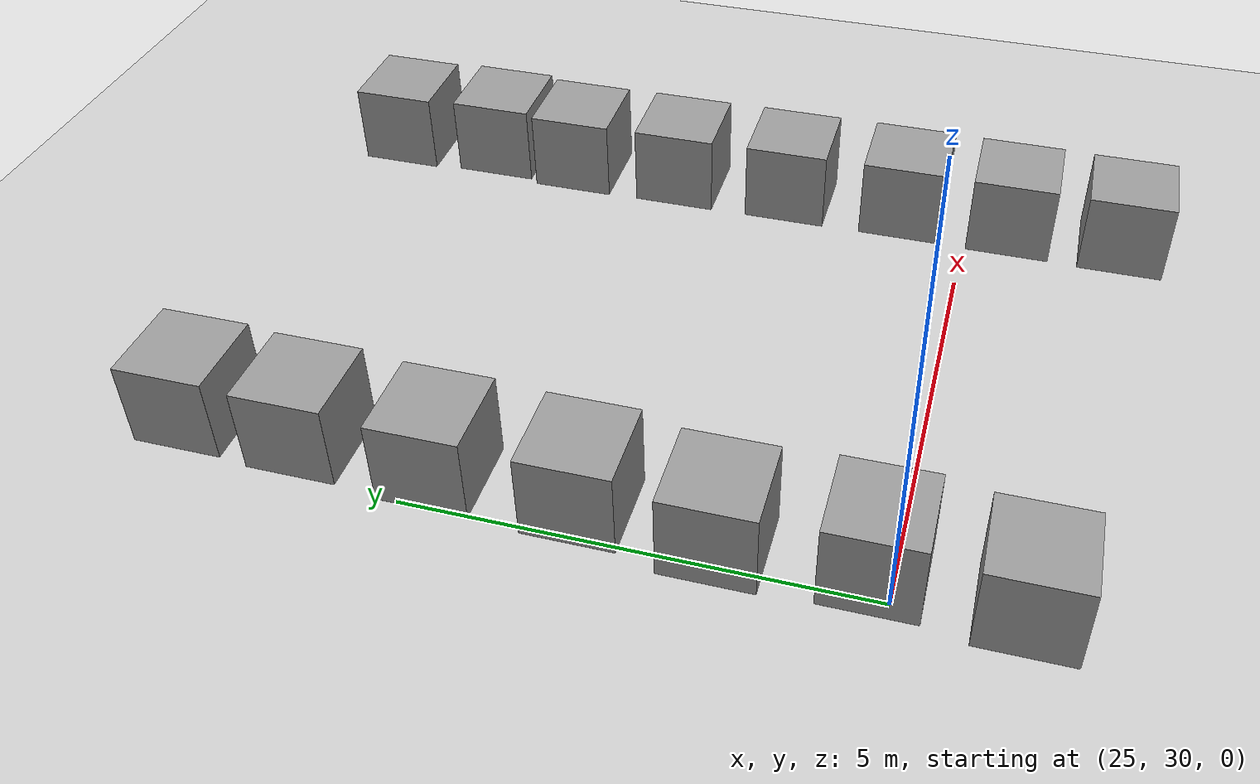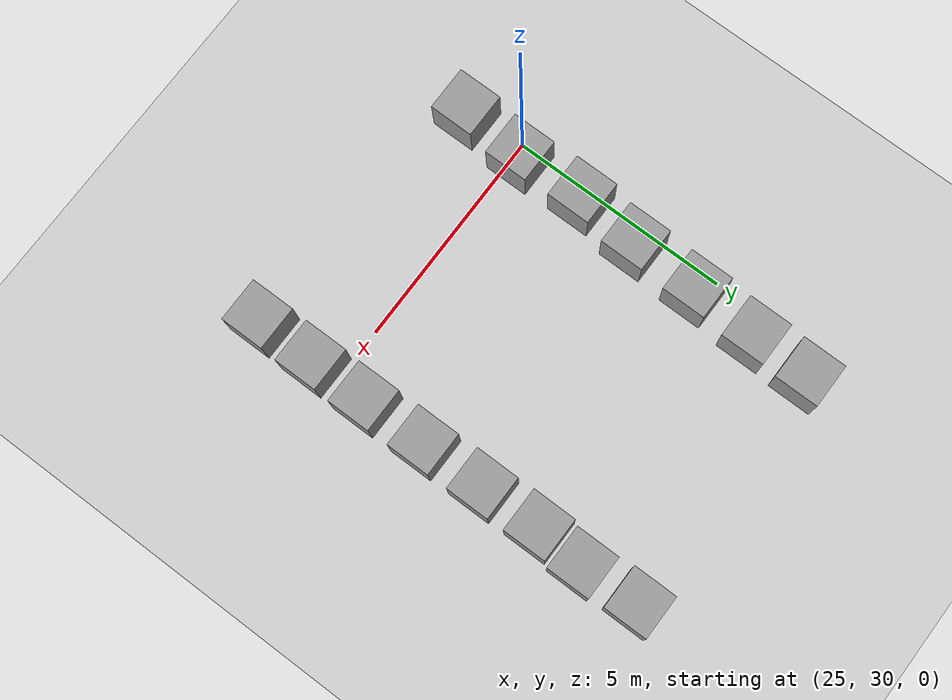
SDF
<sdf version="1.6">
 <world name="default">
  <light name="sun" type="directional">
   <pose>0 0 10 0 -0 0</pose>
   <diffuse>0.8 0.8 0.8 1</diffuse>
   <specular>0.2 0.2 0.2 1</specular>
   <attenuation>
    <range>1000</range>
    <constant>0.9</constant>
    <linear>0.01</linear>
    <quadratic>0.001</quadratic>
   </attenuation>
   <direction>-0.5 0.1 -0.9</direction>
  </light>
  <model name="ground_plane">
   <static>1</static>
   <link name="link">
    <collision name="collision">
     <geometry><plane><normal>0 0 1</normal><size>100 100</size></plane></geometry>
     <surface>
      <contact><collide_bitmask>65535</collide_bitmask></contact>
      <friction><ode><mu>100</mu><mu2>50</mu2></ode></friction>
     </surface>
    </collision>
    <visual name="visual">
     <cast_shadows>0</cast_shadows>
     <geometry><plane><normal>0 0 1</normal><size>100 100</size></plane></geometry>
     <material>
      <script><uri>file://media/materials/scripts/gazebo.material</uri><name>Gazebo/Grey</name></script>
     </material>
    </visual>
   </link>
  </model>
  <gravity>0 0 -9.8</gravity>
  <magnetic_field>6e-06 2.3e-05 -4.2e-05</magnetic_field>
  <atmosphere type="adiabatic"/>
  <physics name="default_physics" default="0" type="ode">
   <max_step_size>0.001</max_step_size>
   <real_time_factor>1</real_time_factor>
   <real_time_update_rate>1000</real_time_update_rate>
  </physics>
  <scene><ambient>0.4 0.4 0.4 1</ambient><background>0.7 0.7 0.7 1</background><shadows>1</shadows></scene>
  <audio><device>default</device></audio>
  <spherical_coordinates>
   <surface_model>EARTH_WGS84</surface_model>
   <latitude_deg>0</latitude_deg>
   <longitude_deg>0</longitude_deg>
   <elevation>0</elevation>
   <heading_deg>0</heading_deg>
  </spherical_coordinates>
  <model name="unit_box">
   <pose>25.6032 37.5416 0.499995 0 1e-05 0</pose>
   <link name="link">
    <inertial>
     <mass>1</mass>
     <inertia>
      <ixx>0.166667</ixx>
      <ixy>0</ixy>
      <ixz>0</ixz>
      <iyy>0.166667</iyy>
      <iyz>0</iyz>
      <izz>0.166667</izz>
     </inertia>
    </inertial>
    <collision name="collision"><geometry><box><size>1 1 1</size></box></geometry></collision>
    <visual name="visual">
     <geometry><box><size>1 1 1</size></box></geometry>
     <material>
      <script><name>Gazebo/Grey</name><uri>file://media/materials/scripts/gazebo.material</uri></script>
     </material>
    </visual>
   </link>
  </model>
  <model name="unit_box_0">
   <pose>25.5545 36.2111 0.499995 -1e-05 -0 -0</pose>
   <link name="link">
    <inertial>
     <mass>1</mass>
     <inertia>
      <ixx>0.166667</ixx>
      <ixy>0</ixy>
      <ixz>0</ixz>
      <iyy>0.166667</iyy>
      <iyz>0</iyz>
      <izz>0.166667</izz>
     </inertia>
    </inertial>
    <collision name="collision"><geometry><box><size>1 1 1</size></box></geometry></collision>
    <visual name="visual">
     <geometry><box><size>1 1 1</size></box></geometry>
     <material>
      <script><name>Gazebo/Grey</name><uri>file://media/materials/scripts/gazebo.material</uri></script>
     </material>
    </visual>
   </link>
  </model>
  <model name="unit_box_1">
   <pose>25.4823 34.727 0.499995 0 1e-05 0</pose>
   <link name="link">
    <inertial>
     <mass>1</mass>
     <inertia>
      <ixx>0.166667</ixx>
      <ixy>0</ixy>
      <ixz>0</ixz>
      <iyy>0.166667</iyy>
      <iyz>0</iyz>
      <izz>0.166667</izz>
     </inertia>
    </inertial>
    <collision name="collision"><geometry><box><size>1 1 1</size></box></geometry></collision>
    <visual name="visual">
     <geometry><box><size>1 1 1</size></box></geometry>
     <material>
      <script><name>Gazebo/Grey</name><uri>file://media/materials/scripts/gazebo.material</uri></script>
     </material>
    </visual>
   </link>
  </model>
  <model name="unit_box_2">
   <pose>25.4311 33.1678 0.499995 -1e-05 -0 -0</pose>
   <link name="link">
    <inertial>
     <mass>1</mass>
     <inertia>
      <ixx>0.166667</ixx>
      <ixy>0</ixy>
      <ixz>0</ixz>
      <iyy>0.166667</iyy>
      <iyz>0</iyz>
      <izz>0.166667</izz>
     </inertia>
    </inertial>
    <collision name="collision"><geometry><box><size>1 1 1</size></box></geometry></collision>
    <visual name="visual">
     <geometry><box><size>1 1 1</size></box></geometry>
     <material>
      <script><name>Gazebo/Grey</name><uri>file://media/materials/scripts/gazebo.material</uri></script>
     </material>
    </visual>
   </link>
  </model>
  <model name="unit_box_3">
   <pose>25.2872 31.7316 0.499995 0 1e-05 0</pose>
   <link name="link">
    <inertial>
     <mass>1</mass>
     <inertia>
      <ixx>0.166667</ixx>
      <ixy>0</ixy>
      <ixz>0</ixz>
      <iyy>0.166667</iyy>
      <iyz>0</iyz>
      <izz>0.166667</izz>
     </inertia>
    </inertial>
    <collision name="collision"><geometry><box><size>1 1 1</size></box></geometry></collision>
    <visual name="visual">
     <geometry><box><size>1 1 1</size></box></geometry>
     <material>
      <script><name>Gazebo/Grey</name><uri>file://media/materials/scripts/gazebo.material</uri></script>
     </material>
    </visual>
   </link>
  </model>
  <model name="unit_box_4">
   <pose>25.3263 30.1879 0.499995 -1e-05 -0 -0</pose>
   <link name="link">
    <inertial>
     <mass>1</mass>
     <inertia>
      <ixx>0.166667</ixx>
      <ixy>0</ixy>
      <ixz>0</ixz>
      <iyy>0.166667</iyy>
      <iyz>0</iyz>
      <izz>0.166667</izz>
     </inertia>
    </inertial>
    <collision name="collision"><geometry><box><size>1 1 1</size></box></geometry></collision>
    <visual name="visual">
     <geometry><box><size>1 1 1</size></box></geometry>
     <material>
      <script><name>Gazebo/Grey</name><uri>file://media/materials/scripts/gazebo.material</uri></script>
     </material>
    </visual>
   </link>
  </model>
  <model name="unit_box_5">
   <pose>25.2211 28.7265 0.499995 0 1e-05 0</pose>
   <link name="link">
    <inertial>
     <mass>1</mass>
     <inertia>
      <ixx>0.166667</ixx>
      <ixy>0</ixy>
      <ixz>0</ixz>
      <iyy>0.166667</iyy>
      <iyz>0</iyz>
      <izz>0.166667</izz>
     </inertia>
    </inertial>
    <collision name="collision"><geometry><box><size>1 1 1</size></box></geometry></collision>
    <visual name="visual">
     <geometry><box><size>1 1 1</size></box></geometry>
     <material>
      <script><name>Gazebo/Grey</name><uri>file://media/materials/scripts/gazebo.material</uri></script>
     </material>
    </visual>
   </link>
  </model>
  <model name="unit_box_6">
   <pose>31.2333 37.4914 0.499995 -1e-05 -0 -0</pose>
   <link name="link">
    <inertial>
     <mass>1</mass>
     <inertia>
      <ixx>0.166667</ixx>
      <ixy>0</ixy>
      <ixz>0</ixz>
      <iyy>0.166667</iyy>
      <iyz>0</iyz>
      <izz>0.166667</izz>
     </inertia>
    </inertial>
    <collision name="collision"><geometry><box><size>1 1 1</size></box></geometry></collision>
    <visual name="visual">
     <geometry><box><size>1 1 1</size></box></geometry>
     <material>
      <script><name>Gazebo/Grey</name><uri>file://media/materials/scripts/gazebo.material</uri></script>
     </material>
    </visual>
   </link>
  </model>
  <model name="unit_box_7">
   <pose>31.2838 36.1673 0.499995 0 1e-05 0</pose>
   <link name="link">
    <inertial>
     <mass>1</mass>
     <inertia>
      <ixx>0.166667</ixx>
      <ixy>0</ixy>
      <ixz>0</ixz>
      <iyy>0.166667</iyy>
      <iyz>0</iyz>
      <izz>0.166667</izz>
     </inertia>
    </inertial>
    <collision name="collision"><geometry><box><size>1 1 1</size></box></geometry></collision>
    <visual name="visual">
     <geometry><box><size>1 1 1</size></box></geometry>
     <material>
      <script><name>Gazebo/Grey</name><uri>file://media/materials/scripts/gazebo.material</uri></script>
     </material>
    </visual>
   </link>
  </model>
  <model name="unit_box_8">
   <pose>31.2068 35.0653 0.499995 -1e-05 -0 -0</pose>
   <link name="link">
    <inertial>
     <mass>1</mass>
     <inertia>
      <ixx>0.166667</ixx>
      <ixy>0</ixy>
      <ixz>0</ixz>
      <iyy>0.166667</iyy>
      <iyz>0</iyz>
      <izz>0.166667</izz>
     </inertia>
    </inertial>
    <collision name="collision"><geometry><box><size>1 1 1</size></box></geometry></collision>
    <visual name="visual">
     <geometry><box><size>1 1 1</size></box></geometry>
     <material>
      <script><name>Gazebo/Grey</name><uri>file://media/materials/scripts/gazebo.material</uri></script>
     </material>
    </visual>
   </link>
  </model>
  <model name="unit_box_9">
   <pose>31.2238 33.6978 0.499995 0 1e-05 0</pose>
   <link name="link">
    <inertial>
     <mass>1</mass>
     <inertia>
      <ixx>0.166667</ixx>
      <ixy>0</ixy>
      <ixz>0</ixz>
      <iyy>0.166667</iyy>
      <iyz>0</iyz>
      <izz>0.166667</izz>
     </inertia>
    </inertial>
    <collision name="collision"><geometry><box><size>1 1 1</size></box></geometry></collision>
    <visual name="visual">
     <geometry><box><size>1 1 1</size></box></geometry>
     <material>
      <script><name>Gazebo/Grey</name><uri>file://media/materials/scripts/gazebo.material</uri></script>
     </material>
    </visual>
   </link>
  </model>
  <model name="unit_box_10">
   <pose>31.2376 32.2553 0.499995 -1e-05 -0 -0</pose>
   <link name="link">
    <inertial>
     <mass>1</mass>
     <inertia>
      <ixx>0.166667</ixx>
      <ixy>0</ixy>
      <ixz>0</ixz>
      <iyy>0.166667</iyy>
      <iyz>0</iyz>
      <izz>0.166667</izz>
     </inertia>
    </inertial>
    <collision name="collision"><geometry><box><size>1 1 1</size></box></geometry></collision>
    <visual name="visual">
     <geometry><box><size>1 1 1</size></box></geometry>
     <material>
      <script><name>Gazebo/Grey</name><uri>file://media/materials/scripts/gazebo.material</uri></script>
     </material>
    </visual>
   </link>
  </model>
  <model name="unit_box_11">
   <pose>31.2489 30.792 0.499995 0 1e-05 0</pose>
   <link name="link">
    <inertial>
     <mass>1</mass>
     <inertia>
      <ixx>0.166667</ixx>
      <ixy>0</ixy>
      <ixz>0</ixz>
      <iyy>0.166667</iyy>
      <iyz>0</iyz>
      <izz>0.166667</izz>
     </inertia>
    </inertial>
    <collision name="collision"><geometry><box><size>1 1 1</size></box></geometry></collision>
    <visual name="visual">
     <geometry><box><size>1 1 1</size></box></geometry>
     <material>
      <script><name>Gazebo/Grey</name><uri>file://media/materials/scripts/gazebo.material</uri></script>
     </material>
    </visual>
   </link>
  </model>
  <model name="unit_box_12">
   <pose>31.2316 29.4518 0.499995 -1e-05 -0 0</pose>
   <link name="link">
    <inertial>
     <mass>1</mass>
     <inertia>
      <ixx>0.166667</ixx>
      <ixy>0</ixy>
      <ixz>0</ixz>
      <iyy>0.166667</iyy>
      <iyz>0</iyz>
      <izz>0.166667</izz>
     </inertia>
    </inertial>
    <collision name="collision"><geometry><box><size>1 1 1</size></box></geometry></collision>
    <visual name="visual">
     <geometry><box><size>1 1 1</size></box></geometry>
     <material>
      <script><name>Gazebo/Grey</name><uri>file://media/materials/scripts/gazebo.material</uri></script>
     </material>
    </visual>
   </link>
  </model>
  <model name="unit_box_13">
   <pose>31.2145 28.0969 0.5 0 -0 0</pose>
   <link name="link">
    <inertial>
     <mass>1</mass>
     <inertia>
      <ixx>0.166667</ixx>
      <ixy>0</ixy>
      <ixz>0</ixz>
      <iyy>0.166667</iyy>
      <iyz>0</iyz>
      <izz>0.166667</izz>
     </inertia>
    </inertial>
    <collision name="collision"><geometry><box><size>1 1 1</size></box></geometry></collision>
    <visual name="visual">
     <geometry><box><size>1 1 1</size></box></geometry>
     <material>
      <script><name>Gazebo/Grey</name><uri>file://media/materials/scripts/gazebo.material</uri></script>
     </material>
    </visual>
   </link>
  </model>
 </world>
</sdf>
